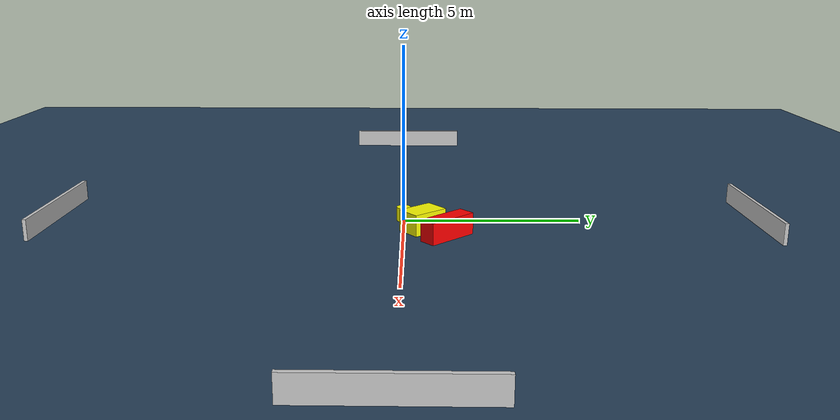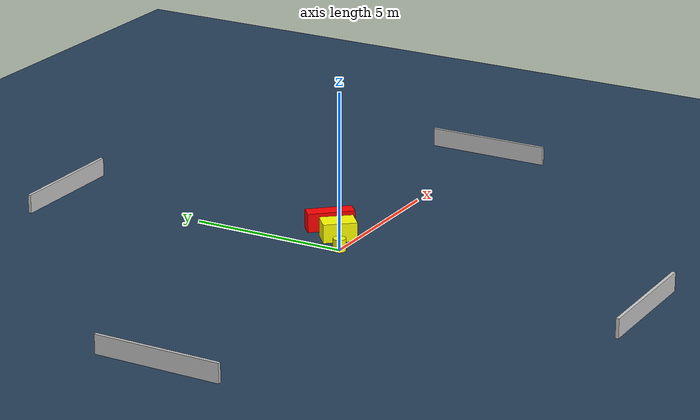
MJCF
<?xml version="1.0" ?>
<mujoco model="generated_environment">
  <option timestep="0.01" integrator="RK4" cone="elliptic"/>
  <default>
    <geom density="1"/>
  </default>
  <asset>
    <texture builtin="gradient" height="3072" name="skybox" rgb1="0.3 0.5 0.7" rgb2="0 0 0" type="skybox" width="512"/>
    <texture builtin="checker" height="300" name="groundplane" rgb1="0.2 0.3 0.4" rgb2="0.1 0.2 0.3" type="2d" width="300"/>
    <material name="groundplane" reflectance="0.2" texrepeat="5 5" texture="groundplane"/>
  </asset>
  <worldbody>
    <light dir="0 0 -1" directional="true" pos="0 0 1.5"/>
    <geom condim="3" friction="0.5 0.005 0.001" material="groundplane" name="floor" pos="0 0 0" size="0 0 0.05" type="plane"/>
    <body name="walls">
      <geom name="wall_1" condim="4" pos="-10.0 0.0 0.3" rgba="0.800000011920929 0.800000011920929 0.800000011920929 1.0" size="0.05 2.0 0.3" type="box"/>
      <geom name="wall_2" condim="4" pos="10.0 0.0 0.3" rgba="0.800000011920929 0.800000011920929 0.800000011920929 1.0" size="0.05 2.0 0.3" type="box"/>
      <geom name="wall_3" condim="4" pos="0.0 -10.0 0.3" rgba="0.800000011920929 0.800000011920929 0.800000011920929 1.0" size="2.0 0.05 0.3" type="box"/>
      <geom name="wall_4" condim="4" pos="0.0 10.0 0.3" rgba="0.800000011920929 0.800000011920929 0.800000011920929 1.0" size="2.0 0.05 0.3" type="box"/>
    </body>
    <body name="robot">
      <joint name="joint_x" type="slide" pos="0 0 0" axis="1 0 0"/>
      <joint name="joint_y" type="slide" pos="0 0 0" axis="0 1 0"/>
      <geom name="robot" type="cylinder" pos="0.0 0.0 0.2" size="0.2 0.2 0.0" mass="5.0" friction="1.0 0.005 0.0001" condim="4" rgba="1.0 1.0 0.0 1.0"/>
    </body>
    <body name="obstacle_1_movable">
      <geom name="obstacle_1_movable" condim="4" pos="0.8651688375882405 0.536547173920499 0.3" euler="0 0 220.20013944291478" friction="0.0 0.005 0.001" rgba="1.0 1.0 0.0 1.0" size="0.35292931310171904 0.5327587008067618 0.3" type="box" mass="0.1"/>
      <joint type="free"/>
    </body>
    <body name="obstacle_2_static">
      <geom name="obstacle_2_static" condim="4" pos="1.4933909011624464 1.1890348635374106 0.3" euler="0 0 42.28979956496934" friction="0.0 0.005 0.001" rgba="1.0 0.0 0.0 1.0" size="0.24552286917627697 0.7443425794803145 0.3" type="box"/>
    </body>
  </worldbody>
  <actuator>
    <motor name="actuator_x" joint="joint_x" gear="1" ctrlrange="-1 1"/>
    <motor name="actuator_y" joint="joint_y" gear="1" ctrlrange="-1 1"/>
  </actuator>
</mujoco>
